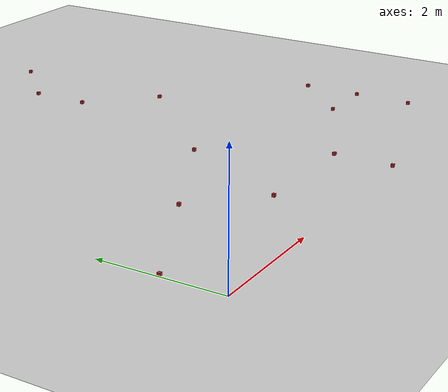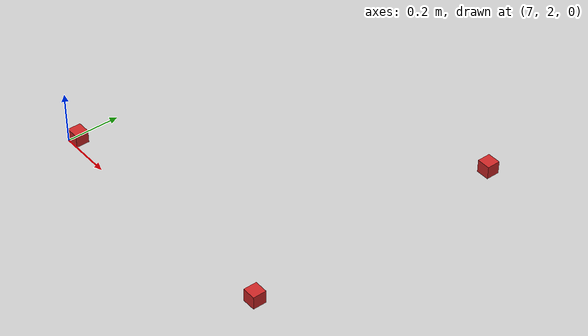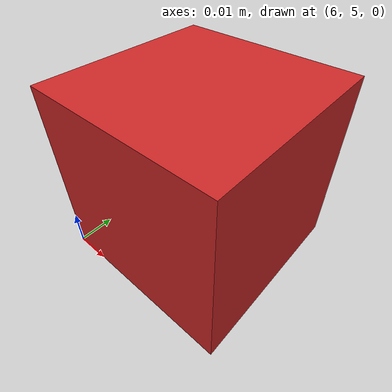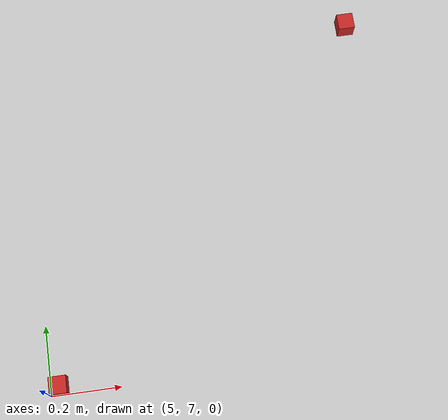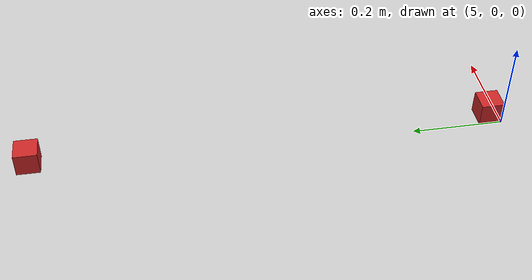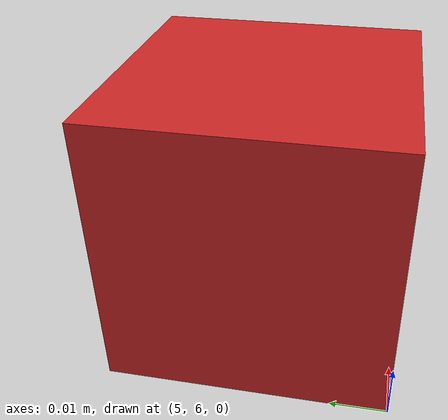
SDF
<?xml version="1.0"?>
<sdf version="1.4">
  <world name="default">
    <physics type="ode">
      <gravity>0 0 -9.81</gravity>
      <ode>
        <solver>
          <type>quick</type>
          <iters>100</iters>
          <sor>1.3</sor>
        </solver>
        <constraints>
          <cfm>0.0</cfm>
          <erp>0.2</erp>
          <contact_max_correcting_vel>100.0</contact_max_correcting_vel>
          <contact_surface_layer>0.001</contact_surface_layer>
        </constraints>
      </ode>
      <real_time_update_rate>100</real_time_update_rate>
      <max_step_size>0.01</max_step_size>
    </physics>
    <include>
      <uri>model://sun</uri>
    </include>
    <include>
      <uri>model://ground_plane</uri>
    </include>
    <include>
      <uri>model://block</uri>
      <name>block_0</name>
      <pose>5 6 0 0 0 0</pose>
      <static>true</static>
    </include>
    <include>
      <uri>model://block</uri>
      <name>block_1</name>
      <pose>4 3 0 0 0 0</pose>
      <static>true</static>
    </include>
    <include>
      <uri>model://block</uri>
      <name>block_2</name>
      <pose>8 3 0 0 0 0</pose>
      <static>true</static>
    </include>
    <include>
      <uri>model://block</uri>
      <name>block_3</name>
      <pose>5 7 0 0 0 0</pose>
      <static>true</static>
    </include>
    <include>
      <uri>model://block</uri>
      <name>block_4</name>
      <pose>5 0 0 0 0 0</pose>
      <static>true</static>
    </include>
    <include>
      <uri>model://block</uri>
      <name>block_5</name>
      <pose>8 1 0 0 0 0</pose>
      <static>true</static>
    </include>
    <include>
      <uri>model://block</uri>
      <name>block_6</name>
      <pose>8 2 0 0 0 0</pose>
      <static>true</static>
    </include>
    <include>
      <uri>model://block</uri>
      <name>block_7</name>
      <pose>2 2 0 0 0 0</pose>
      <static>true</static>
    </include>
    <include>
      <uri>model://block</uri>
      <name>block_8</name>
      <pose>3 1 0 0 0 0</pose>
      <static>true</static>
    </include>
    <include>
      <uri>model://block</uri>
      <name>block_9</name>
      <pose>6 5 0 0 0 0</pose>
      <static>true</static>
    </include>
    <include>
      <uri>model://block</uri>
      <name>block_10</name>
      <pose>6 8 0 0 0 0</pose>
      <static>true</static>
    </include>
    <include>
      <uri>model://block</uri>
      <name>block_10</name>
      <pose>5 6 0 0 0 0</pose>
      <static>true</static>
    </include>
    <include>
      <uri>model://block</uri>
      <name>block_11</name>
      <pose>5 1 0 0 0 0</pose>
      <static>true</static>
    </include>
    <include>
      <uri>model://block</uri>
      <name>block_12</name>
      <pose>7 2 0 0 0 0</pose>
      <static>true</static>
    </include>
    <include>
      <uri>model://block</uri>
      <name>block_13</name>
      <pose>0 1 0 0 0 0</pose>
      <static>true</static>
    </include>
    <include>
      <uri>model://block</uri>
      <name>block_14</name>
      <pose>8 3 0 0 0 0</pose>
      <static>true</static>
    </include>
  </world>
</sdf>

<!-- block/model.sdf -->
<sdf version="1.6">
    <model name="block">
        <link name="piece">
            <inertial>
                <pose frame=''>0.025 0.025 0.025 0 -0 0</pose>
                <mass>0.1</mass>
                <inertia>
                    <ixx>0.000416</ixx>
                    <ixy>0</ixy>
                    <ixz>0</ixz>
                    <iyy>0.000416</iyy>
                    <iyz>0</iyz>
                    <izz>0.000416</izz>
                </inertia>
            </inertial>
            <collision name="collision">
                <pose frame=''>0.025 0.025 0.025 0 0 0</pose>
                <geometry>
                    <box>
                        <size>0.05 0.05 0.05</size>
                    </box>
                </geometry>
                <surface>
                    <friction>
                        <ode>
                            <mu>0.1</mu>
                            <mu2>0.1</mu2>
                        </ode>
                    </friction>
                </surface>
            </collision>
            <visual name="visual">
                <pose frame=''>0.025 0.025 0.025 0 0 0</pose>
                <geometry>
                    <box>
                        <size>0.05 0.05 0.05</size>
                    </box>
                </geometry>
                <material>
                    <script>
                        <uri>file://media/materials/scripts/gazebo.material</uri>
                        <name>Gazebo/Red</name>
                    </script>
                </material>
            </visual>
        </link>
    </model>
</sdf>
